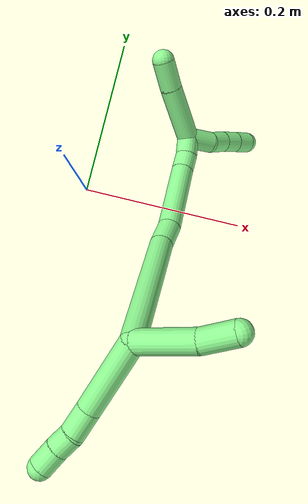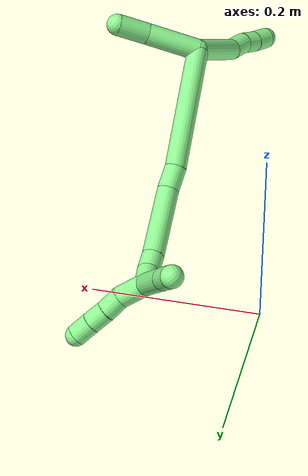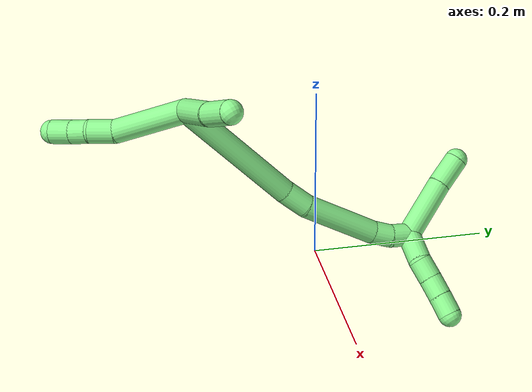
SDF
<sdf version="1.7">
 <world name="default">
  <model name="13">
   <static>0</static>
   <link name="13">
    <collision name="collision-cylinder-e_1_2_8">
     <pose>-0.032331 -0.018928 0.013576 0.9486 -0.946477 -0.514124</pose>
     <geometry><cylinder><radius>0.0125</radius><length>0.079696</length></cylinder></geometry>
     <surface>
      <friction><ode><mu>1.16</mu><mu2>1.16</mu2><slip1>0</slip1><slip2>0</slip2></ode></friction>
      <contact><ode><kp>1e+06</kp><kd>1</kd><max_vel>0</max_vel><min_depth>0.001</min_depth></ode></contact>
     </surface>
    </collision>
    <visual name="visual-cylinder-e_1_2_8">
     <pose>-0.032331 -0.018928 0.013576 0.9486 -0.946477 -0.514124</pose>
     <geometry><cylinder><radius>0.0125</radius><length>0.079696</length></cylinder></geometry>
     <material><ambient>0.564706 0.984314 0.572549 1</ambient></material>
    </visual>
    <collision name="collision-cylinder-e_2_8_9">
     <pose>-0.073263 -0.045219 0.034799 0.766483 -0.680854 -0.283706</pose>
     <geometry><cylinder><radius>0.0125</radius><length>0.027325</length></cylinder></geometry>
     <surface>
      <friction><ode><mu>1.16</mu><mu2>1.16</mu2><slip1>0</slip1><slip2>0</slip2></ode></friction>
      <contact><ode><kp>1e+06</kp><kd>1</kd><max_vel>0</max_vel><min_depth>0.001</min_depth></ode></contact>
     </surface>
    </collision>
    <visual name="visual-cylinder-e_2_8_9">
     <pose>-0.073263 -0.045219 0.034799 0.766483 -0.680854 -0.283706</pose>
     <geometry><cylinder><radius>0.0125</radius><length>0.027325</length></cylinder></geometry>
     <material><ambient>0.564706 0.984314 0.572549 1</ambient></material>
    </visual>
    <collision name="collision-cylinder-e_3_9_10">
     <pose>-0.089521 -0.055808 0.048036 0.523314 -0.870611 -0.247806</pose>
     <geometry><cylinder><radius>0.0125</radius><length>0.020029</length></cylinder></geometry>
     <surface>
      <friction><ode><mu>1.16</mu><mu2>1.16</mu2><slip1>0</slip1><slip2>0</slip2></ode></friction>
      <contact><ode><kp>1e+06</kp><kd>1</kd><max_vel>0</max_vel><min_depth>0.001</min_depth></ode></contact>
     </surface>
    </collision>
    <visual name="visual-cylinder-e_3_9_10">
     <pose>-0.089521 -0.055808 0.048036 0.523314 -0.870611 -0.247806</pose>
     <geometry><cylinder><radius>0.0125</radius><length>0.020029</length></cylinder></geometry>
     <material><ambient>0.564706 0.984314 0.572549 1</ambient></material>
    </visual>
    <collision name="collision-cylinder-e_4_10_6">
     <pose>-0.105269 -0.063635 0.060337 0.60105 -0.782455 -0.254292</pose>
     <geometry><cylinder><radius>0.0125</radius><length>0.02295</length></cylinder></geometry>
     <surface>
      <friction><ode><mu>1.16</mu><mu2>1.16</mu2><slip1>0</slip1><slip2>0</slip2></ode></friction>
      <contact><ode><kp>1e+06</kp><kd>1</kd><max_vel>0</max_vel><min_depth>0.001</min_depth></ode></contact>
     </surface>
    </collision>
    <visual name="visual-cylinder-e_4_10_6">
     <pose>-0.105269 -0.063635 0.060337 0.60105 -0.782455 -0.254292</pose>
     <geometry><cylinder><radius>0.0125</radius><length>0.02295</length></cylinder></geometry>
     <material><ambient>0.564706 0.984314 0.572549 1</ambient></material>
    </visual>
    <collision name="collision-cylinder-e_1_2_11">
     <pose>0.024488 -0.011859 -0.015615 2.49207 0.895638 1.91895</pose>
     <geometry><cylinder><radius>0.0125</radius><length>0.062742</length></cylinder></geometry>
     <surface>
      <friction><ode><mu>1.16</mu><mu2>1.16</mu2><slip1>0</slip1><slip2>0</slip2></ode></friction>
      <contact><ode><kp>1e+06</kp><kd>1</kd><max_vel>0</max_vel><min_depth>0.001</min_depth></ode></contact>
     </surface>
    </collision>
    <visual name="visual-cylinder-e_1_2_11">
     <pose>0.024488 -0.011859 -0.015615 2.49207 0.895638 1.91895</pose>
     <geometry><cylinder><radius>0.0125</radius><length>0.062742</length></cylinder></geometry>
     <material><ambient>0.564706 0.984314 0.572549 1</ambient></material>
    </visual>
    <collision name="collision-cylinder-e_2_11_5">
     <pose>0.06504 -0.027363 -0.039931 2.7449 1.03976 2.46622</pose>
     <geometry><cylinder><radius>0.0125</radius><length>0.037258</length></cylinder></geometry>
     <surface>
      <friction><ode><mu>1.16</mu><mu2>1.16</mu2><slip1>0</slip1><slip2>0</slip2></ode></friction>
      <contact><ode><kp>1e+06</kp><kd>1</kd><max_vel>0</max_vel><min_depth>0.001</min_depth></ode></contact>
     </surface>
    </collision>
    <visual name="visual-cylinder-e_2_11_5">
     <pose>0.06504 -0.027363 -0.039931 2.7449 1.03976 2.46622</pose>
     <geometry><cylinder><radius>0.0125</radius><length>0.037258</length></cylinder></geometry>
     <material><ambient>0.564706 0.984314 0.572549 1</ambient></material>
    </visual>
    <collision name="collision-cylinder-e_1_2_12">
     <pose>-0.016392 0.045768 -0.052646 -2.42597 -0.230786 0.601199</pose>
     <geometry><cylinder><radius>0.0125</radius><length>0.143319</length></cylinder></geometry>
     <surface>
      <friction><ode><mu>1.16</mu><mu2>1.16</mu2><slip1>0</slip1><slip2>0</slip2></ode></friction>
      <contact><ode><kp>1e+06</kp><kd>1</kd><max_vel>0</max_vel><min_depth>0.001</min_depth></ode></contact>
     </surface>
    </collision>
    <visual name="visual-cylinder-e_1_2_12">
     <pose>-0.016392 0.045768 -0.052646 -2.42597 -0.230786 0.601199</pose>
     <geometry><cylinder><radius>0.0125</radius><length>0.143319</length></cylinder></geometry>
     <material><ambient>0.564706 0.984314 0.572549 1</ambient></material>
    </visual>
    <collision name="collision-cylinder-e_2_12_13">
     <pose>-0.033957 0.100519 -0.116524 -2.46695 -0.081465 0.231366</pose>
     <geometry><cylinder><radius>0.0125</radius><length>0.028858</length></cylinder></geometry>
     <surface>
      <friction><ode><mu>1.16</mu><mu2>1.16</mu2><slip1>0</slip1><slip2>0</slip2></ode></friction>
      <contact><ode><kp>1e+06</kp><kd>1</kd><max_vel>0</max_vel><min_depth>0.001</min_depth></ode></contact>
     </surface>
    </collision>
    <visual name="visual-cylinder-e_2_12_13">
     <pose>-0.033957 0.100519 -0.116524 -2.46695 -0.081465 0.231366</pose>
     <geometry><cylinder><radius>0.0125</radius><length>0.028858</length></cylinder></geometry>
     <material><ambient>0.564706 0.984314 0.572549 1</ambient></material>
    </visual>
    <collision name="collision-cylinder-e_3_13_14">
     <pose>-0.034851 0.141662 -0.15467 -2.26764 0.006678 -0.014296</pose>
     <geometry><cylinder><radius>0.0125</radius><length>0.083876</length></cylinder></geometry>
     <surface>
      <friction><ode><mu>1.16</mu><mu2>1.16</mu2><slip1>0</slip1><slip2>0</slip2></ode></friction>
      <contact><ode><kp>1e+06</kp><kd>1</kd><max_vel>0</max_vel><min_depth>0.001</min_depth></ode></contact>
     </surface>
    </collision>
    <visual name="visual-cylinder-e_3_13_14">
     <pose>-0.034851 0.141662 -0.15467 -2.26764 0.006678 -0.014296</pose>
     <geometry><cylinder><radius>0.0125</radius><length>0.083876</length></cylinder></geometry>
     <material><ambient>0.564706 0.984314 0.572549 1</ambient></material>
    </visual>
    <collision name="collision-cylinder-e_4_14_15">
     <pose>-0.032705 0.182334 -0.187963 -2.21385 0.173701 -0.344629</pose>
     <geometry><cylinder><radius>0.0125</radius><length>0.021598</length></cylinder></geometry>
     <surface>
      <friction><ode><mu>1.16</mu><mu2>1.16</mu2><slip1>0</slip1><slip2>0</slip2></ode></friction>
      <contact><ode><kp>1e+06</kp><kd>1</kd><max_vel>0</max_vel><min_depth>0.001</min_depth></ode></contact>
     </surface>
    </collision>
    <visual name="visual-cylinder-e_4_14_15">
     <pose>-0.032705 0.182334 -0.187963 -2.21385 0.173701 -0.344629</pose>
     <geometry><cylinder><radius>0.0125</radius><length>0.021598</length></cylinder></geometry>
     <material><ambient>0.564706 0.984314 0.572549 1</ambient></material>
    </visual>
    <collision name="collision-cylinder-e_5_15_1">
     <pose>-0.027612 0.20072 -0.198462 -1.96616 0.292899 -0.435761</pose>
     <geometry><cylinder><radius>0.0125</radius><length>0.02235</length></cylinder></geometry>
     <surface>
      <friction><ode><mu>1.16</mu><mu2>1.16</mu2><slip1>0</slip1><slip2>0</slip2></ode></friction>
      <contact><ode><kp>1e+06</kp><kd>1</kd><max_vel>0</max_vel><min_depth>0.001</min_depth></ode></contact>
     </surface>
    </collision>
    <visual name="visual-cylinder-e_5_15_1">
     <pose>-0.027612 0.20072 -0.198462 -1.96616 0.292899 -0.435761</pose>
     <geometry><cylinder><radius>0.0125</radius><length>0.02235</length></cylinder></geometry>
     <material><ambient>0.564706 0.984314 0.572549 1</ambient></material>
    </visual>
    <collision name="collision-cylinder-e_1_1_16">
     <pose>-0.00647 0.233943 -0.187602 -1.00037 0.573411 -0.319527</pose>
     <geometry><cylinder><radius>0.0125</radius><length>0.066048</length></cylinder></geometry>
     <surface>
      <friction><ode><mu>1.16</mu><mu2>1.16</mu2><slip1>0</slip1><slip2>0</slip2></ode></friction>
      <contact><ode><kp>1e+06</kp><kd>1</kd><max_vel>0</max_vel><min_depth>0.001</min_depth></ode></contact>
     </surface>
    </collision>
    <visual name="visual-cylinder-e_1_1_16">
     <pose>-0.00647 0.233943 -0.187602 -1.00037 0.573411 -0.319527</pose>
     <geometry><cylinder><radius>0.0125</radius><length>0.066048</length></cylinder></geometry>
     <material><ambient>0.564706 0.984314 0.572549 1</ambient></material>
    </visual>
    <collision name="collision-cylinder-e_2_16_4">
     <pose>0.021153 0.269441 -0.165812 -1.0599 0.608754 -0.364002</pose>
     <geometry><cylinder><radius>0.0125</radius><length>0.033952</length></cylinder></geometry>
     <surface>
      <friction><ode><mu>1.16</mu><mu2>1.16</mu2><slip1>0</slip1><slip2>0</slip2></ode></friction>
      <contact><ode><kp>1e+06</kp><kd>1</kd><max_vel>0</max_vel><min_depth>0.001</min_depth></ode></contact>
     </surface>
    </collision>
    <visual name="visual-cylinder-e_2_16_4">
     <pose>0.021153 0.269441 -0.165812 -1.0599 0.608754 -0.364002</pose>
     <geometry><cylinder><radius>0.0125</radius><length>0.033952</length></cylinder></geometry>
     <material><ambient>0.564706 0.984314 0.572549 1</ambient></material>
    </visual>
    <collision name="collision-cylinder-e_1_1_17">
     <pose>-0.023905 0.205875 -0.218388 2.85148 0.029159 0.198958</pose>
     <geometry><cylinder><radius>0.0125</radius><length>0.033004</length></cylinder></geometry>
     <surface>
      <friction><ode><mu>1.16</mu><mu2>1.16</mu2><slip1>0</slip1><slip2>0</slip2></ode></friction>
      <contact><ode><kp>1e+06</kp><kd>1</kd><max_vel>0</max_vel><min_depth>0.001</min_depth></ode></contact>
     </surface>
    </collision>
    <visual name="visual-cylinder-e_1_1_17">
     <pose>-0.023905 0.205875 -0.218388 2.85148 0.029159 0.198958</pose>
     <geometry><cylinder><radius>0.0125</radius><length>0.033004</length></cylinder></geometry>
     <material><ambient>0.564706 0.984314 0.572549 1</ambient></material>
    </visual>
    <collision name="collision-cylinder-e_2_17_18">
     <pose>-0.024146 0.201094 -0.245525 3.13615 -0.063726 -2.97135</pose>
     <geometry><cylinder><radius>0.0125</radius><length>0.022708</length></cylinder></geometry>
     <surface>
      <friction><ode><mu>1.16</mu><mu2>1.16</mu2><slip1>0</slip1><slip2>0</slip2></ode></friction>
      <contact><ode><kp>1e+06</kp><kd>1</kd><max_vel>0</max_vel><min_depth>0.001</min_depth></ode></contact>
     </surface>
    </collision>
    <visual name="visual-cylinder-e_2_17_18">
     <pose>-0.024146 0.201094 -0.245525 3.13615 -0.063726 -2.97135</pose>
     <geometry><cylinder><radius>0.0125</radius><length>0.022708</length></cylinder></geometry>
     <material><ambient>0.564706 0.984314 0.572549 1</ambient></material>
    </visual>
    <collision name="collision-cylinder-e_3_18_19">
     <pose>-0.025175 0.200167 -0.267697 3.06191 -0.028078 -0.677248</pose>
     <geometry><cylinder><radius>0.0125</radius><length>0.021761</length></cylinder></geometry>
     <surface>
      <friction><ode><mu>1.16</mu><mu2>1.16</mu2><slip1>0</slip1><slip2>0</slip2></ode></friction>
      <contact><ode><kp>1e+06</kp><kd>1</kd><max_vel>0</max_vel><min_depth>0.001</min_depth></ode></contact>
     </surface>
    </collision>
    <visual name="visual-cylinder-e_3_18_19">
     <pose>-0.025175 0.200167 -0.267697 3.06191 -0.028078 -0.677248</pose>
     <geometry><cylinder><radius>0.0125</radius><length>0.021761</length></cylinder></geometry>
     <material><ambient>0.564706 0.984314 0.572549 1</ambient></material>
    </visual>
    <collision name="collision-cylinder-e_4_19_3">
     <pose>-0.026115 0.19832 -0.289741 3.05426 -0.056355 -1.14582</pose>
     <geometry><cylinder><radius>0.0125</radius><length>0.022527</length></cylinder></geometry>
     <surface>
      <friction><ode><mu>1.16</mu><mu2>1.16</mu2><slip1>0</slip1><slip2>0</slip2></ode></friction>
      <contact><ode><kp>1e+06</kp><kd>1</kd><max_vel>0</max_vel><min_depth>0.001</min_depth></ode></contact>
     </surface>
    </collision>
    <visual name="visual-cylinder-e_4_19_3">
     <pose>-0.026115 0.19832 -0.289741 3.05426 -0.056355 -1.14582</pose>
     <geometry><cylinder><radius>0.0125</radius><length>0.022527</length></cylinder></geometry>
     <material><ambient>0.564706 0.984314 0.572549 1</ambient></material>
    </visual>
    <collision name="collision-sphere-3">
     <pose>-0.026749 0.197339 -0.300944 0 -0 0</pose>
     <geometry><sphere><radius>0.0125</radius></sphere></geometry>
     <surface>
      <friction><ode><mu>1.16</mu><mu2>1.16</mu2><slip1>0</slip1><slip2>0</slip2></ode></friction>
      <contact><ode><kp>1e+06</kp><kd>1</kd><max_vel>0</max_vel><min_depth>0.001</min_depth></ode></contact>
     </surface>
    </collision>
    <visual name="visual-sphere-3">
     <pose>-0.026749 0.197339 -0.300944 0 -0 0</pose>
     <geometry><sphere><radius>0.0125</radius></sphere></geometry>
     <material><ambient>0.564706 0.984314 0.572549 1</ambient></material>
    </visual>
    <collision name="collision-sphere-19">
     <pose>-0.02548 0.199301 -0.278538 0 -0 0</pose>
     <geometry><sphere><radius>0.0125</radius></sphere></geometry>
     <surface>
      <friction><ode><mu>1.16</mu><mu2>1.16</mu2><slip1>0</slip1><slip2>0</slip2></ode></friction>
      <contact><ode><kp>1e+06</kp><kd>1</kd><max_vel>0</max_vel><min_depth>0.001</min_depth></ode></contact>
     </surface>
    </collision>
    <visual name="visual-sphere-19">
     <pose>-0.02548 0.199301 -0.278538 0 -0 0</pose>
     <geometry><sphere><radius>0.0125</radius></sphere></geometry>
     <material><ambient>0.564706 0.984314 0.572549 1</ambient></material>
    </visual>
    <collision name="collision-sphere-11">
     <pose>0.048977 -0.023718 -0.03123 0 -0 0</pose>
     <geometry><sphere><radius>0.0125</radius></sphere></geometry>
     <surface>
      <friction><ode><mu>1.16</mu><mu2>1.16</mu2><slip1>0</slip1><slip2>0</slip2></ode></friction>
      <contact><ode><kp>1e+06</kp><kd>1</kd><max_vel>0</max_vel><min_depth>0.001</min_depth></ode></contact>
     </surface>
    </collision>
    <visual name="visual-sphere-11">
     <pose>0.048977 -0.023718 -0.03123 0 -0 0</pose>
     <geometry><sphere><radius>0.0125</radius></sphere></geometry>
     <material><ambient>0.564706 0.984314 0.572549 1</ambient></material>
    </visual>
    <collision name="collision-sphere-6">
     <pose>-0.113359 -0.068237 0.067048 0 -0 0</pose>
     <geometry><sphere><radius>0.0125</radius></sphere></geometry>
     <surface>
      <friction><ode><mu>1.16</mu><mu2>1.16</mu2><slip1>0</slip1><slip2>0</slip2></ode></friction>
      <contact><ode><kp>1e+06</kp><kd>1</kd><max_vel>0</max_vel><min_depth>0.001</min_depth></ode></contact>
     </surface>
    </collision>
    <visual name="visual-sphere-6">
     <pose>-0.113359 -0.068237 0.067048 0 -0 0</pose>
     <geometry><sphere><radius>0.0125</radius></sphere></geometry>
     <material><ambient>0.564706 0.984314 0.572549 1</ambient></material>
    </visual>
    <collision name="collision-sphere-10">
     <pose>-0.097179 -0.059033 0.053625 0 -0 0</pose>
     <geometry><sphere><radius>0.0125</radius></sphere></geometry>
     <surface>
      <friction><ode><mu>1.16</mu><mu2>1.16</mu2><slip1>0</slip1><slip2>0</slip2></ode></friction>
      <contact><ode><kp>1e+06</kp><kd>1</kd><max_vel>0</max_vel><min_depth>0.001</min_depth></ode></contact>
     </surface>
    </collision>
    <visual name="visual-sphere-10">
     <pose>-0.097179 -0.059033 0.053625 0 -0 0</pose>
     <geometry><sphere><radius>0.0125</radius></sphere></geometry>
     <material><ambient>0.564706 0.984314 0.572549 1</ambient></material>
    </visual>
    <collision name="collision-sphere-9">
     <pose>-0.081863 -0.052583 0.042447 0 -0 0</pose>
     <geometry><sphere><radius>0.0125</radius></sphere></geometry>
     <surface>
      <friction><ode><mu>1.16</mu><mu2>1.16</mu2><slip1>0</slip1><slip2>0</slip2></ode></friction>
      <contact><ode><kp>1e+06</kp><kd>1</kd><max_vel>0</max_vel><min_depth>0.001</min_depth></ode></contact>
     </surface>
    </collision>
    <visual name="visual-sphere-9">
     <pose>-0.081863 -0.052583 0.042447 0 -0 0</pose>
     <geometry><sphere><radius>0.0125</radius></sphere></geometry>
     <material><ambient>0.564706 0.984314 0.572549 1</ambient></material>
    </visual>
    <collision name="collision-sphere-2">
     <geometry><sphere><radius>0.0125</radius></sphere></geometry>
     <surface>
      <friction><ode><mu>1.16</mu><mu2>1.16</mu2><slip1>0</slip1><slip2>0</slip2></ode></friction>
      <contact><ode><kp>1e+06</kp><kd>1</kd><max_vel>0</max_vel><min_depth>0.001</min_depth></ode></contact>
     </surface>
    </collision>
    <visual name="visual-sphere-2">
     <geometry><sphere><radius>0.0125</radius></sphere></geometry>
     <material><ambient>0.564706 0.984314 0.572549 1</ambient></material>
    </visual>
    <collision name="collision-sphere-8">
     <pose>-0.064662 -0.037856 0.027151 0 -0 0</pose>
     <geometry><sphere><radius>0.0125</radius></sphere></geometry>
     <surface>
      <friction><ode><mu>1.16</mu><mu2>1.16</mu2><slip1>0</slip1><slip2>0</slip2></ode></friction>
      <contact><ode><kp>1e+06</kp><kd>1</kd><max_vel>0</max_vel><min_depth>0.001</min_depth></ode></contact>
     </surface>
    </collision>
    <visual name="visual-sphere-8">
     <pose>-0.064662 -0.037856 0.027151 0 -0 0</pose>
     <geometry><sphere><radius>0.0125</radius></sphere></geometry>
     <material><ambient>0.564706 0.984314 0.572549 1</ambient></material>
    </visual>
    <collision name="collision-sphere-5">
     <pose>0.081104 -0.031008 -0.048633 0 -0 0</pose>
     <geometry><sphere><radius>0.0125</radius></sphere></geometry>
     <surface>
      <friction><ode><mu>1.16</mu><mu2>1.16</mu2><slip1>0</slip1><slip2>0</slip2></ode></friction>
      <contact><ode><kp>1e+06</kp><kd>1</kd><max_vel>0</max_vel><min_depth>0.001</min_depth></ode></contact>
     </surface>
    </collision>
    <visual name="visual-sphere-5">
     <pose>0.081104 -0.031008 -0.048633 0 -0 0</pose>
     <geometry><sphere><radius>0.0125</radius></sphere></geometry>
     <material><ambient>0.564706 0.984314 0.572549 1</ambient></material>
    </visual>
    <collision name="collision-sphere-12">
     <pose>-0.032783 0.091536 -0.105293 0 -0 0</pose>
     <geometry><sphere><radius>0.0125</radius></sphere></geometry>
     <surface>
      <friction><ode><mu>1.16</mu><mu2>1.16</mu2><slip1>0</slip1><slip2>0</slip2></ode></friction>
      <contact><ode><kp>1e+06</kp><kd>1</kd><max_vel>0</max_vel><min_depth>0.001</min_depth></ode></contact>
     </surface>
    </collision>
    <visual name="visual-sphere-12">
     <pose>-0.032783 0.091536 -0.105293 0 -0 0</pose>
     <geometry><sphere><radius>0.0125</radius></sphere></geometry>
     <material><ambient>0.564706 0.984314 0.572549 1</ambient></material>
    </visual>
    <collision name="collision-sphere-13">
     <pose>-0.035131 0.109502 -0.127755 0 -0 0</pose>
     <geometry><sphere><radius>0.0125</radius></sphere></geometry>
     <surface>
      <friction><ode><mu>1.16</mu><mu2>1.16</mu2><slip1>0</slip1><slip2>0</slip2></ode></friction>
      <contact><ode><kp>1e+06</kp><kd>1</kd><max_vel>0</max_vel><min_depth>0.001</min_depth></ode></contact>
     </surface>
    </collision>
    <visual name="visual-sphere-13">
     <pose>-0.035131 0.109502 -0.127755 0 -0 0</pose>
     <geometry><sphere><radius>0.0125</radius></sphere></geometry>
     <material><ambient>0.564706 0.984314 0.572549 1</ambient></material>
    </visual>
    <collision name="collision-sphere-14">
     <pose>-0.034571 0.173822 -0.181585 0 -0 0</pose>
     <geometry><sphere><radius>0.0125</radius></sphere></geometry>
     <surface>
      <friction><ode><mu>1.16</mu><mu2>1.16</mu2><slip1>0</slip1><slip2>0</slip2></ode></friction>
      <contact><ode><kp>1e+06</kp><kd>1</kd><max_vel>0</max_vel><min_depth>0.001</min_depth></ode></contact>
     </surface>
    </collision>
    <visual name="visual-sphere-14">
     <pose>-0.034571 0.173822 -0.181585 0 -0 0</pose>
     <geometry><sphere><radius>0.0125</radius></sphere></geometry>
     <material><ambient>0.564706 0.984314 0.572549 1</ambient></material>
    </visual>
    <collision name="collision-sphere-15">
     <pose>-0.030839 0.190846 -0.194341 0 -0 0</pose>
     <geometry><sphere><radius>0.0125</radius></sphere></geometry>
     <surface>
      <friction><ode><mu>1.16</mu><mu2>1.16</mu2><slip1>0</slip1><slip2>0</slip2></ode></friction>
      <contact><ode><kp>1e+06</kp><kd>1</kd><max_vel>0</max_vel><min_depth>0.001</min_depth></ode></contact>
     </surface>
    </collision>
    <visual name="visual-sphere-15">
     <pose>-0.030839 0.190846 -0.194341 0 -0 0</pose>
     <geometry><sphere><radius>0.0125</radius></sphere></geometry>
     <material><ambient>0.564706 0.984314 0.572549 1</ambient></material>
    </visual>
    <collision name="collision-sphere-1">
     <pose>-0.024386 0.210593 -0.202582 0 -0 0</pose>
     <geometry><sphere><radius>0.0125</radius></sphere></geometry>
     <surface>
      <friction><ode><mu>1.16</mu><mu2>1.16</mu2><slip1>0</slip1><slip2>0</slip2></ode></friction>
      <contact><ode><kp>1e+06</kp><kd>1</kd><max_vel>0</max_vel><min_depth>0.001</min_depth></ode></contact>
     </surface>
    </collision>
    <visual name="visual-sphere-1">
     <pose>-0.024386 0.210593 -0.202582 0 -0 0</pose>
     <geometry><sphere><radius>0.0125</radius></sphere></geometry>
     <material><ambient>0.564706 0.984314 0.572549 1</ambient></material>
    </visual>
    <collision name="collision-sphere-18">
     <pose>-0.02487 0.201033 -0.256855 0 -0 0</pose>
     <geometry><sphere><radius>0.0125</radius></sphere></geometry>
     <surface>
      <friction><ode><mu>1.16</mu><mu2>1.16</mu2><slip1>0</slip1><slip2>0</slip2></ode></friction>
      <contact><ode><kp>1e+06</kp><kd>1</kd><max_vel>0</max_vel><min_depth>0.001</min_depth></ode></contact>
     </surface>
    </collision>
    <visual name="visual-sphere-18">
     <pose>-0.02487 0.201033 -0.256855 0 -0 0</pose>
     <geometry><sphere><radius>0.0125</radius></sphere></geometry>
     <material><ambient>0.564706 0.984314 0.572549 1</ambient></material>
    </visual>
    <collision name="collision-sphere-16">
     <pose>0.011446 0.257293 -0.172621 0 -0 0</pose>
     <geometry><sphere><radius>0.0125</radius></sphere></geometry>
     <surface>
      <friction><ode><mu>1.16</mu><mu2>1.16</mu2><slip1>0</slip1><slip2>0</slip2></ode></friction>
      <contact><ode><kp>1e+06</kp><kd>1</kd><max_vel>0</max_vel><min_depth>0.001</min_depth></ode></contact>
     </surface>
    </collision>
    <visual name="visual-sphere-16">
     <pose>0.011446 0.257293 -0.172621 0 -0 0</pose>
     <geometry><sphere><radius>0.0125</radius></sphere></geometry>
     <material><ambient>0.564706 0.984314 0.572549 1</ambient></material>
    </visual>
    <collision name="collision-sphere-4">
     <pose>0.030861 0.281589 -0.159002 0 -0 0</pose>
     <geometry><sphere><radius>0.0125</radius></sphere></geometry>
     <surface>
      <friction><ode><mu>1.16</mu><mu2>1.16</mu2><slip1>0</slip1><slip2>0</slip2></ode></friction>
      <contact><ode><kp>1e+06</kp><kd>1</kd><max_vel>0</max_vel><min_depth>0.001</min_depth></ode></contact>
     </surface>
    </collision>
    <visual name="visual-sphere-4">
     <pose>0.030861 0.281589 -0.159002 0 -0 0</pose>
     <geometry><sphere><radius>0.0125</radius></sphere></geometry>
     <material><ambient>0.564706 0.984314 0.572549 1</ambient></material>
    </visual>
    <collision name="collision-sphere-17">
     <pose>-0.023423 0.201156 -0.234194 0 -0 0</pose>
     <geometry><sphere><radius>0.0125</radius></sphere></geometry>
     <surface>
      <friction><ode><mu>1.16</mu><mu2>1.16</mu2><slip1>0</slip1><slip2>0</slip2></ode></friction>
      <contact><ode><kp>1e+06</kp><kd>1</kd><max_vel>0</max_vel><min_depth>0.001</min_depth></ode></contact>
     </surface>
    </collision>
    <visual name="visual-sphere-17">
     <pose>-0.023423 0.201156 -0.234194 0 -0 0</pose>
     <geometry><sphere><radius>0.0125</radius></sphere></geometry>
     <material><ambient>0.564706 0.984314 0.572549 1</ambient></material>
    </visual>
    <inertial>
     <pose>-0.019448 0.089953 -0.09816 0 -0 0</pose>
     <mass>0.75</mass>
     <inertia>
      <ixx>0.000437</ixx>
      <ixy>0</ixy>
      <ixz>0</ixz>
      <iyy>4.9e-05</iyy>
      <iyz>0</iyz>
      <izz>-0.000153</izz>
     </inertia>
    </inertial>
   </link>
   <pose>0.113423 -0.159943 0.246687 -0.183702 -0.876574 0.7757</pose>
  </model>
 </world>
</sdf>
